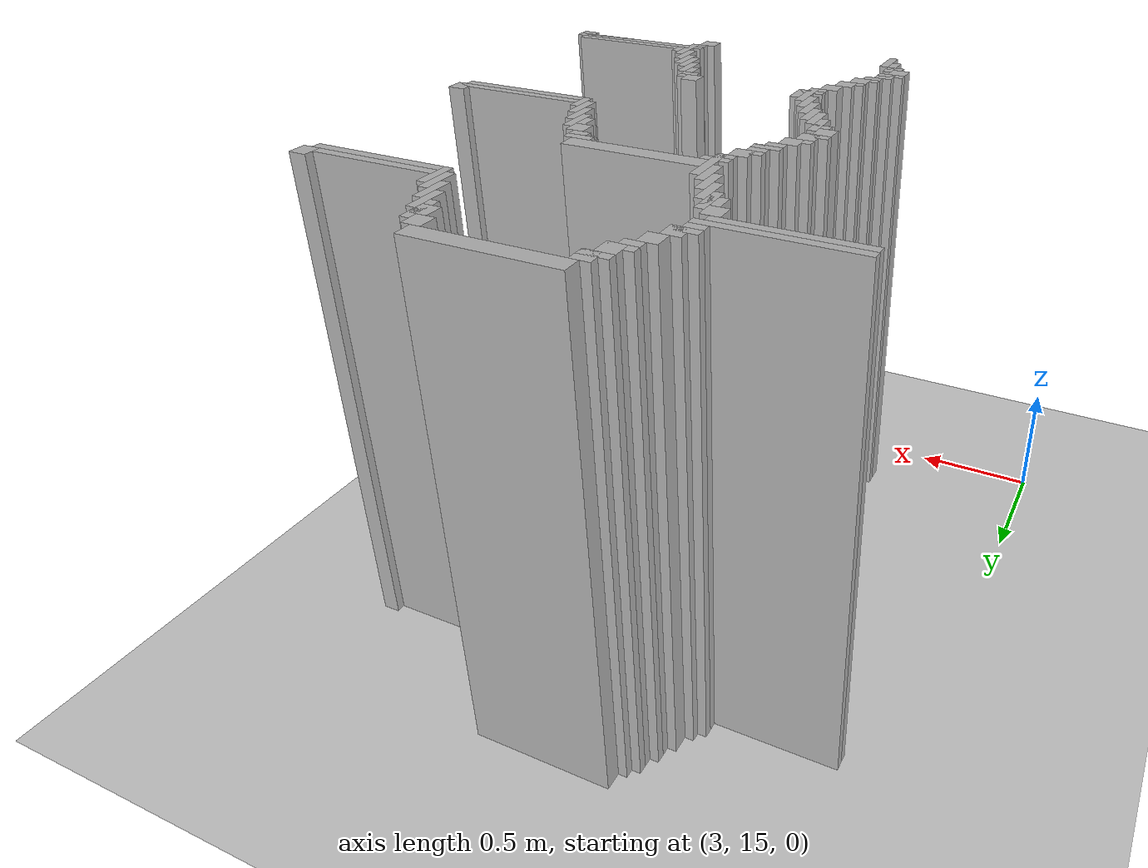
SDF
<sdf version="1.6">
 <world name="slam_world">
  <model name="ground_plane">
   <static>true</static>
   <link name="link">
    <collision name="collision">
     <geometry><plane><normal>0 0 1</normal><size>100 100</size></plane></geometry>
    </collision>
    <visual name="visual">
     <geometry><plane><normal>0 0 1</normal><size>100 100</size></plane></geometry>
     <material>
      <ambient>0.8 0.8 0.8 1</ambient>
      <diffuse>0.8 0.8 0.8 1</diffuse>
      <specular>0.8 0.8 0.8 1</specular>
     </material>
    </visual>
   </link>
  </model>
  <model name="wall_2">
   <static>true</static>
   <pose>4.211136890951276 17.366589327146173 1.0 0 0 0</pose>
   <link name="link">
    <collision name="collision">
     <geometry><box><size>0.5568445475638051 0.06960556844547564 2.0</size></box></geometry>
    </collision>
    <visual name="visual">
     <geometry><box><size>0.5568445475638051 0.06960556844547564 2.0</size></box></geometry>
     <material><ambient>0.5 0.5 0.5 1</ambient><diffuse>0.7 0.7 0.7 1</diffuse></material>
    </visual>
   </link>
  </model>
  <model name="wall_15">
   <static>true</static>
   <pose>3.932714617169373 17.296983758700694 1.0 0 0 0</pose>
   <link name="link">
    <collision name="collision">
     <geometry><box><size>0.06960556844547564 0.06960556844547564 2.0</size></box></geometry>
    </collision>
    <visual name="visual">
     <geometry><box><size>0.06960556844547564 0.06960556844547564 2.0</size></box></geometry>
     <material><ambient>0.5 0.5 0.5 1</ambient><diffuse>0.7 0.7 0.7 1</diffuse></material>
    </visual>
   </link>
  </model>
  <model name="wall_16">
   <static>true</static>
   <pose>4.489559164733178 17.296983758700694 1.0 0 0 0</pose>
   <link name="link">
    <collision name="collision">
     <geometry><box><size>0.06960556844547564 0.06960556844547564 2.0</size></box></geometry>
    </collision>
    <visual name="visual">
     <geometry><box><size>0.06960556844547564 0.06960556844547564 2.0</size></box></geometry>
     <material><ambient>0.5 0.5 0.5 1</ambient><diffuse>0.7 0.7 0.7 1</diffuse></material>
    </visual>
   </link>
  </model>
  <model name="wall_35">
   <static>true</static>
   <pose>3.9153132250580045 17.279582366589327 1.0 0 0 0</pose>
   <link name="link">
    <collision name="collision">
     <geometry><box><size>0.10440835266821345 0.03480278422273782 2.0</size></box></geometry>
    </collision>
    <visual name="visual">
     <geometry><box><size>0.10440835266821345 0.03480278422273782 2.0</size></box></geometry>
     <material><ambient>0.5 0.5 0.5 1</ambient><diffuse>0.7 0.7 0.7 1</diffuse></material>
    </visual>
   </link>
  </model>
  <model name="wall_36">
   <static>true</static>
   <pose>4.541763341067285 17.22737819025522 1.0 0 0 0</pose>
   <link name="link">
    <collision name="collision">
     <geometry><box><size>0.03480278422273782 0.13921113689095127 2.0</size></box></geometry>
    </collision>
    <visual name="visual">
     <geometry><box><size>0.03480278422273782 0.13921113689095127 2.0</size></box></geometry>
     <material><ambient>0.5 0.5 0.5 1</ambient><diffuse>0.7 0.7 0.7 1</diffuse></material>
    </visual>
   </link>
  </model>
  <model name="wall_55">
   <static>true</static>
   <pose>3.897911832946636 17.22737819025522 1.0 0 0 0</pose>
   <link name="link">
    <collision name="collision">
     <geometry><box><size>0.06960556844547564 0.06960556844547564 2.0</size></box></geometry>
    </collision>
    <visual name="visual">
     <geometry><box><size>0.06960556844547564 0.06960556844547564 2.0</size></box></geometry>
     <material><ambient>0.5 0.5 0.5 1</ambient><diffuse>0.7 0.7 0.7 1</diffuse></material>
    </visual>
   </link>
  </model>
  <model name="wall_56">
   <static>true</static>
   <pose>4.524361948955916 17.22737819025522 1.0 0 0 0</pose>
   <link name="link">
    <collision name="collision">
     <geometry><box><size>0.06960556844547564 0.06960556844547564 2.0</size></box></geometry>
    </collision>
    <visual name="visual">
     <geometry><box><size>0.06960556844547564 0.06960556844547564 2.0</size></box></geometry>
     <material><ambient>0.5 0.5 0.5 1</ambient><diffuse>0.7 0.7 0.7 1</diffuse></material>
    </visual>
   </link>
  </model>
  <model name="wall_75">
   <static>true</static>
   <pose>3.8805104408352666 17.209976798143853 1.0 0 0 0</pose>
   <link name="link">
    <collision name="collision">
     <geometry><box><size>0.10440835266821345 0.03480278422273782 2.0</size></box></geometry>
    </collision>
    <visual name="visual">
     <geometry><box><size>0.10440835266821345 0.03480278422273782 2.0</size></box></geometry>
     <material><ambient>0.5 0.5 0.5 1</ambient><diffuse>0.7 0.7 0.7 1</diffuse></material>
    </visual>
   </link>
  </model>
  <model name="wall_76">
   <static>true</static>
   <pose>4.576566125290023 17.157772621809745 1.0 0 0 0</pose>
   <link name="link">
    <collision name="collision">
     <geometry><box><size>0.03480278422273782 0.13921113689095127 2.0</size></box></geometry>
    </collision>
    <visual name="visual">
     <geometry><box><size>0.03480278422273782 0.13921113689095127 2.0</size></box></geometry>
     <material><ambient>0.5 0.5 0.5 1</ambient><diffuse>0.7 0.7 0.7 1</diffuse></material>
    </visual>
   </link>
  </model>
  <model name="wall_93">
   <static>true</static>
   <pose>3.863109048723898 17.17517401392111 1.0 0 0 0</pose>
   <link name="link">
    <collision name="collision">
     <geometry><box><size>0.06960556844547564 0.03480278422273782 2.0</size></box></geometry>
    </collision>
    <visual name="visual">
     <geometry><box><size>0.06960556844547564 0.03480278422273782 2.0</size></box></geometry>
     <material><ambient>0.5 0.5 0.5 1</ambient><diffuse>0.7 0.7 0.7 1</diffuse></material>
    </visual>
   </link>
  </model>
  <model name="wall_105">
   <static>true</static>
   <pose>3.82830626450116 17.122969837587007 1.0 0 0 0</pose>
   <link name="link">
    <collision name="collision">
     <geometry><box><size>0.06960556844547564 0.06960556844547564 2.0</size></box></geometry>
    </collision>
    <visual name="visual">
     <geometry><box><size>0.06960556844547564 0.06960556844547564 2.0</size></box></geometry>
     <material><ambient>0.5 0.5 0.5 1</ambient><diffuse>0.7 0.7 0.7 1</diffuse></material>
    </visual>
   </link>
  </model>
  <model name="wall_106">
   <static>true</static>
   <pose>4.611368909512761 17.08816705336427 1.0 0 0 0</pose>
   <link name="link">
    <collision name="collision">
     <geometry><box><size>0.03480278422273782 0.13921113689095127 2.0</size></box></geometry>
    </collision>
    <visual name="visual">
     <geometry><box><size>0.03480278422273782 0.13921113689095127 2.0</size></box></geometry>
     <material><ambient>0.5 0.5 0.5 1</ambient><diffuse>0.7 0.7 0.7 1</diffuse></material>
    </visual>
   </link>
  </model>
  <model name="wall_125">
   <static>true</static>
   <pose>3.793503480278422 17.053364269141532 1.0 0 0 0</pose>
   <link name="link">
    <collision name="collision">
     <geometry><box><size>0.06960556844547564 0.06960556844547564 2.0</size></box></geometry>
    </collision>
    <visual name="visual">
     <geometry><box><size>0.06960556844547564 0.06960556844547564 2.0</size></box></geometry>
     <material><ambient>0.5 0.5 0.5 1</ambient><diffuse>0.7 0.7 0.7 1</diffuse></material>
    </visual>
   </link>
  </model>
  <model name="wall_126">
   <static>true</static>
   <pose>4.646171693735498 17.01856148491879 1.0 0 0 0</pose>
   <link name="link">
    <collision name="collision">
     <geometry><box><size>0.03480278422273782 0.13921113689095127 2.0</size></box></geometry>
    </collision>
    <visual name="visual">
     <geometry><box><size>0.03480278422273782 0.13921113689095127 2.0</size></box></geometry>
     <material><ambient>0.5 0.5 0.5 1</ambient><diffuse>0.7 0.7 0.7 1</diffuse></material>
    </visual>
   </link>
  </model>
  <model name="wall_145">
   <static>true</static>
   <pose>3.776102088167053 17.035962877030162 1.0 0 0 0</pose>
   <link name="link">
    <collision name="collision">
     <geometry><box><size>0.10440835266821345 0.03480278422273782 2.0</size></box></geometry>
    </collision>
    <visual name="visual">
     <geometry><box><size>0.10440835266821345 0.03480278422273782 2.0</size></box></geometry>
     <material><ambient>0.5 0.5 0.5 1</ambient><diffuse>0.7 0.7 0.7 1</diffuse></material>
    </visual>
   </link>
  </model>
  <model name="wall_146">
   <static>true</static>
   <pose>4.6809744779582365 16.983758700696054 1.0 0 0 0</pose>
   <link name="link">
    <collision name="collision">
     <geometry><box><size>0.03480278422273782 0.13921113689095127 2.0</size></box></geometry>
    </collision>
    <visual name="visual">
     <geometry><box><size>0.03480278422273782 0.13921113689095127 2.0</size></box></geometry>
     <material><ambient>0.5 0.5 0.5 1</ambient><diffuse>0.7 0.7 0.7 1</diffuse></material>
    </visual>
   </link>
  </model>
  <model name="wall_163">
   <static>true</static>
   <pose>3.7587006960556844 16.983758700696054 1.0 0 0 0</pose>
   <link name="link">
    <collision name="collision">
     <geometry><box><size>0.06960556844547564 0.06960556844547564 2.0</size></box></geometry>
    </collision>
    <visual name="visual">
     <geometry><box><size>0.06960556844547564 0.06960556844547564 2.0</size></box></geometry>
     <material><ambient>0.5 0.5 0.5 1</ambient><diffuse>0.7 0.7 0.7 1</diffuse></material>
    </visual>
   </link>
  </model>
  <model name="wall_164">
   <static>true</static>
   <pose>5.220417633410673 16.983758700696054 1.0 0 0 0</pose>
   <link name="link">
    <collision name="collision">
     <geometry><box><size>0.06960556844547564 0.06960556844547564 2.0</size></box></geometry>
    </collision>
    <visual name="visual">
     <geometry><box><size>0.06960556844547564 0.06960556844547564 2.0</size></box></geometry>
     <material><ambient>0.5 0.5 0.5 1</ambient><diffuse>0.7 0.7 0.7 1</diffuse></material>
    </visual>
   </link>
  </model>
  <model name="wall_173">
   <static>true</static>
   <pose>3.51508120649652 16.966357308584687 1.0 0 0 0</pose>
   <link name="link">
    <collision name="collision">
     <geometry><box><size>0.5568445475638051 0.03480278422273782 2.0</size></box></geometry>
    </collision>
    <visual name="visual">
     <geometry><box><size>0.5568445475638051 0.03480278422273782 2.0</size></box></geometry>
     <material><ambient>0.5 0.5 0.5 1</ambient><diffuse>0.7 0.7 0.7 1</diffuse></material>
    </visual>
   </link>
  </model>
  <model name="wall_174">
   <static>true</static>
   <pose>4.976798143851508 16.966357308584687 1.0 0 0 0</pose>
   <link name="link">
    <collision name="collision">
     <geometry><box><size>0.5568445475638051 0.03480278422273782 2.0</size></box></geometry>
    </collision>
    <visual name="visual">
     <geometry><box><size>0.5568445475638051 0.03480278422273782 2.0</size></box></geometry>
     <material><ambient>0.5 0.5 0.5 1</ambient><diffuse>0.7 0.7 0.7 1</diffuse></material>
    </visual>
   </link>
  </model>
  <model name="wall_184">
   <static>true</static>
   <pose>3.4976798143851506 16.93155452436195 1.0 0 0 0</pose>
   <link name="link">
    <collision name="collision">
     <geometry><box><size>0.5220417633410672 0.03480278422273782 2.0</size></box></geometry>
    </collision>
    <visual name="visual">
     <geometry><box><size>0.5220417633410672 0.03480278422273782 2.0</size></box></geometry>
     <material><ambient>0.5 0.5 0.5 1</ambient><diffuse>0.7 0.7 0.7 1</diffuse></material>
    </visual>
   </link>
  </model>
  <model name="wall_185">
   <static>true</static>
   <pose>4.959396751740139 16.93155452436195 1.0 0 0 0</pose>
   <link name="link">
    <collision name="collision">
     <geometry><box><size>0.5220417633410672 0.03480278422273782 2.0</size></box></geometry>
    </collision>
    <visual name="visual">
     <geometry><box><size>0.5220417633410672 0.03480278422273782 2.0</size></box></geometry>
     <material><ambient>0.5 0.5 0.5 1</ambient><diffuse>0.7 0.7 0.7 1</diffuse></material>
    </visual>
   </link>
  </model>
  <model name="wall_194">
   <static>true</static>
   <pose>3.7587006960556844 16.87935034802784 1.0 0 0 0</pose>
   <link name="link">
    <collision name="collision">
     <geometry><box><size>0.06960556844547564 0.06960556844547564 2.0</size></box></geometry>
    </collision>
    <visual name="visual">
     <geometry><box><size>0.06960556844547564 0.06960556844547564 2.0</size></box></geometry>
     <material><ambient>0.5 0.5 0.5 1</ambient><diffuse>0.7 0.7 0.7 1</diffuse></material>
    </visual>
   </link>
  </model>
  <model name="wall_202">
   <static>true</static>
   <pose>3.810904872389791 16.809744779582367 1.0 0 0 0</pose>
   <link name="link">
    <collision name="collision">
     <geometry><box><size>0.03480278422273782 0.13921113689095127 2.0</size></box></geometry>
    </collision>
    <visual name="visual">
     <geometry><box><size>0.03480278422273782 0.13921113689095127 2.0</size></box></geometry>
     <material><ambient>0.5 0.5 0.5 1</ambient><diffuse>0.7 0.7 0.7 1</diffuse></material>
    </visual>
   </link>
  </model>
  <model name="wall_210">
   <static>true</static>
   <pose>3.793503480278422 16.809744779582367 1.0 0 0 0</pose>
   <link name="link">
    <collision name="collision">
     <geometry><box><size>0.06960556844547564 0.06960556844547564 2.0</size></box></geometry>
    </collision>
    <visual name="visual">
     <geometry><box><size>0.06960556844547564 0.06960556844547564 2.0</size></box></geometry>
     <material><ambient>0.5 0.5 0.5 1</ambient><diffuse>0.7 0.7 0.7 1</diffuse></material>
    </visual>
   </link>
  </model>
  <model name="wall_218">
   <static>true</static>
   <pose>3.845707656612529 16.74013921113689 1.0 0 0 0</pose>
   <link name="link">
    <collision name="collision">
     <geometry><box><size>0.03480278422273782 0.13921113689095127 2.0</size></box></geometry>
    </collision>
    <visual name="visual">
     <geometry><box><size>0.03480278422273782 0.13921113689095127 2.0</size></box></geometry>
     <material><ambient>0.5 0.5 0.5 1</ambient><diffuse>0.7 0.7 0.7 1</diffuse></material>
    </visual>
   </link>
  </model>
  <model name="wall_230">
   <static>true</static>
   <pose>3.8805104408352666 16.670533642691414 1.0 0 0 0</pose>
   <link name="link">
    <collision name="collision">
     <geometry><box><size>0.03480278422273782 0.13921113689095127 2.0</size></box></geometry>
    </collision>
    <visual name="visual">
     <geometry><box><size>0.03480278422273782 0.13921113689095127 2.0</size></box></geometry>
     <material><ambient>0.5 0.5 0.5 1</ambient><diffuse>0.7 0.7 0.7 1</diffuse></material>
    </visual>
   </link>
  </model>
  <model name="wall_238">
   <static>true</static>
   <pose>3.9153132250580045 16.60092807424594 1.0 0 0 0</pose>
   <link name="link">
    <collision name="collision">
     <geometry><box><size>0.03480278422273782 0.13921113689095127 2.0</size></box></geometry>
    </collision>
    <visual name="visual">
     <geometry><box><size>0.03480278422273782 0.13921113689095127 2.0</size></box></geometry>
     <material><ambient>0.5 0.5 0.5 1</ambient><diffuse>0.7 0.7 0.7 1</diffuse></material>
    </visual>
   </link>
  </model>
  <model name="wall_246">
   <static>true</static>
   <pose>3.9501160092807424 16.531322505800464 1.0 0 0 0</pose>
   <link name="link">
    <collision name="collision">
     <geometry><box><size>0.03480278422273782 0.2088167053364269 2.0</size></box></geometry>
    </collision>
    <visual name="visual">
     <geometry><box><size>0.03480278422273782 0.2088167053364269 2.0</size></box></geometry>
     <material><ambient>0.5 0.5 0.5 1</ambient><diffuse>0.7 0.7 0.7 1</diffuse></material>
    </visual>
   </link>
  </model>
  <model name="wall_261">
   <static>true</static>
   <pose>4.228538283062645 16.531322505800464 1.0 0 0 0</pose>
   <link name="link">
    <collision name="collision">
     <geometry><box><size>0.5220417633410672 0.06960556844547564 2.0</size></box></geometry>
    </collision>
    <visual name="visual">
     <geometry><box><size>0.5220417633410672 0.06960556844547564 2.0</size></box></geometry>
     <material><ambient>0.5 0.5 0.5 1</ambient><diffuse>0.7 0.7 0.7 1</diffuse></material>
    </visual>
   </link>
  </model>
  <model name="wall_281">
   <static>true</static>
   <pose>3.9501160092807424 16.479118329466356 1.0 0 0 0</pose>
   <link name="link">
    <collision name="collision">
     <geometry><box><size>0.10440835266821345 0.03480278422273782 2.0</size></box></geometry>
    </collision>
    <visual name="visual">
     <geometry><box><size>0.10440835266821345 0.03480278422273782 2.0</size></box></geometry>
     <material><ambient>0.5 0.5 0.5 1</ambient><diffuse>0.7 0.7 0.7 1</diffuse></material>
    </visual>
   </link>
  </model>
  <model name="wall_282">
   <static>true</static>
   <pose>4.472157772621809 16.479118329466356 1.0 0 0 0</pose>
   <link name="link">
    <collision name="collision">
     <geometry><box><size>0.10440835266821345 0.03480278422273782 2.0</size></box></geometry>
    </collision>
    <visual name="visual">
     <geometry><box><size>0.10440835266821345 0.03480278422273782 2.0</size></box></geometry>
     <material><ambient>0.5 0.5 0.5 1</ambient><diffuse>0.7 0.7 0.7 1</diffuse></material>
    </visual>
   </link>
  </model>
  <model name="wall_294">
   <static>true</static>
   <pose>3.932714617169373 16.44431554524362 1.0 0 0 0</pose>
   <link name="link">
    <collision name="collision">
     <geometry><box><size>0.06960556844547564 0.03480278422273782 2.0</size></box></geometry>
    </collision>
    <visual name="visual">
     <geometry><box><size>0.06960556844547564 0.03480278422273782 2.0</size></box></geometry>
     <material><ambient>0.5 0.5 0.5 1</ambient><diffuse>0.7 0.7 0.7 1</diffuse></material>
    </visual>
   </link>
  </model>
  <model name="wall_295">
   <static>true</static>
   <pose>4.489559164733178 16.44431554524362 1.0 0 0 0</pose>
   <link name="link">
    <collision name="collision">
     <geometry><box><size>0.06960556844547564 0.03480278422273782 2.0</size></box></geometry>
    </collision>
    <visual name="visual">
     <geometry><box><size>0.06960556844547564 0.03480278422273782 2.0</size></box></geometry>
     <material><ambient>0.5 0.5 0.5 1</ambient><diffuse>0.7 0.7 0.7 1</diffuse></material>
    </visual>
   </link>
  </model>
  <model name="wall_304">
   <static>true</static>
   <pose>3.897911832946636 16.39211136890951 1.0 0 0 0</pose>
   <link name="link">
    <collision name="collision">
     <geometry><box><size>0.06960556844547564 0.06960556844547564 2.0</size></box></geometry>
    </collision>
    <visual name="visual">
     <geometry><box><size>0.06960556844547564 0.06960556844547564 2.0</size></box></geometry>
     <material><ambient>0.5 0.5 0.5 1</ambient><diffuse>0.7 0.7 0.7 1</diffuse></material>
    </visual>
   </link>
  </model>
  <model name="wall_305">
   <static>true</static>
   <pose>4.524361948955916 16.39211136890951 1.0 0 0 0</pose>
   <link name="link">
    <collision name="collision">
     <geometry><box><size>0.06960556844547564 0.06960556844547564 2.0</size></box></geometry>
    </collision>
    <visual name="visual">
     <geometry><box><size>0.06960556844547564 0.06960556844547564 2.0</size></box></geometry>
     <material><ambient>0.5 0.5 0.5 1</ambient><diffuse>0.7 0.7 0.7 1</diffuse></material>
    </visual>
   </link>
  </model>
  <model name="wall_321">
   <static>true</static>
   <pose>3.8805104408352666 16.374709976798144 1.0 0 0 0</pose>
   <link name="link">
    <collision name="collision">
     <geometry><box><size>0.10440835266821345 0.03480278422273782 2.0</size></box></geometry>
    </collision>
    <visual name="visual">
     <geometry><box><size>0.10440835266821345 0.03480278422273782 2.0</size></box></geometry>
     <material><ambient>0.5 0.5 0.5 1</ambient><diffuse>0.7 0.7 0.7 1</diffuse></material>
    </visual>
   </link>
  </model>
  <model name="wall_322">
   <static>true</static>
   <pose>4.576566125290023 16.322505800464036 1.0 0 0 0</pose>
   <link name="link">
    <collision name="collision">
     <geometry><box><size>0.03480278422273782 0.13921113689095127 2.0</size></box></geometry>
    </collision>
    <visual name="visual">
     <geometry><box><size>0.03480278422273782 0.13921113689095127 2.0</size></box></geometry>
     <material><ambient>0.5 0.5 0.5 1</ambient><diffuse>0.7 0.7 0.7 1</diffuse></material>
    </visual>
   </link>
  </model>
  <model name="wall_338">
   <static>true</static>
   <pose>3.863109048723898 16.322505800464036 1.0 0 0 0</pose>
   <link name="link">
    <collision name="collision">
     <geometry><box><size>0.06960556844547564 0.06960556844547564 2.0</size></box></geometry>
    </collision>
    <visual name="visual">
     <geometry><box><size>0.06960556844547564 0.06960556844547564 2.0</size></box></geometry>
     <material><ambient>0.5 0.5 0.5 1</ambient><diffuse>0.7 0.7 0.7 1</diffuse></material>
    </visual>
   </link>
  </model>
  <model name="wall_339">
   <static>true</static>
   <pose>4.559164733178654 16.322505800464036 1.0 0 0 0</pose>
   <link name="link">
    <collision name="collision">
     <geometry><box><size>0.06960556844547564 0.06960556844547564 2.0</size></box></geometry>
    </collision>
    <visual name="visual">
     <geometry><box><size>0.06960556844547564 0.06960556844547564 2.0</size></box></geometry>
     <material><ambient>0.5 0.5 0.5 1</ambient><diffuse>0.7 0.7 0.7 1</diffuse></material>
    </visual>
   </link>
  </model>
  <model name="wall_355">
   <static>true</static>
   <pose>3.845707656612529 16.30510440835267 1.0 0 0 0</pose>
   <link name="link">
    <collision name="collision">
     <geometry><box><size>0.10440835266821345 0.03480278422273782 2.0</size></box></geometry>
    </collision>
    <visual name="visual">
     <geometry><box><size>0.10440835266821345 0.03480278422273782 2.0</size></box></geometry>
     <material><ambient>0.5 0.5 0.5 1</ambient><diffuse>0.7 0.7 0.7 1</diffuse></material>
    </visual>
   </link>
  </model>
  <model name="wall_356">
   <static>true</static>
   <pose>4.611368909512761 16.25290023201856 1.0 0 0 0</pose>
   <link name="link">
    <collision name="collision">
     <geometry><box><size>0.03480278422273782 0.13921113689095127 2.0</size></box></geometry>
    </collision>
    <visual name="visual">
     <geometry><box><size>0.03480278422273782 0.13921113689095127 2.0</size></box></geometry>
     <material><ambient>0.5 0.5 0.5 1</ambient><diffuse>0.7 0.7 0.7 1</diffuse></material>
    </visual>
   </link>
  </model>
  <model name="wall_369">
   <static>true</static>
   <pose>3.82830626450116 16.270301624129928 1.0 0 0 0</pose>
   <link name="link">
    <collision name="collision">
     <geometry><box><size>0.06960556844547564 0.03480278422273782 2.0</size></box></geometry>
    </collision>
    <visual name="visual">
     <geometry><box><size>0.06960556844547564 0.03480278422273782 2.0</size></box></geometry>
     <material><ambient>0.5 0.5 0.5 1</ambient><diffuse>0.7 0.7 0.7 1</diffuse></material>
    </visual>
   </link>
  </model>
  <model name="wall_380">
   <static>true</static>
   <pose>3.793503480278422 16.218097447795824 1.0 0 0 0</pose>
   <link name="link">
    <collision name="collision">
     <geometry><box><size>0.06960556844547564 0.06960556844547564 2.0</size></box></geometry>
    </collision>
    <visual name="visual">
     <geometry><box><size>0.06960556844547564 0.06960556844547564 2.0</size></box></geometry>
     <material><ambient>0.5 0.5 0.5 1</ambient><diffuse>0.7 0.7 0.7 1</diffuse></material>
    </visual>
   </link>
  </model>
  <model name="wall_381">
   <static>true</static>
   <pose>4.646171693735498 16.183294663573086 1.0 0 0 0</pose>
   <link name="link">
    <collision name="collision">
     <geometry><box><size>0.03480278422273782 0.13921113689095127 2.0</size></box></geometry>
    </collision>
    <visual name="visual">
     <geometry><box><size>0.03480278422273782 0.13921113689095127 2.0</size></box></geometry>
     <material><ambient>0.5 0.5 0.5 1</ambient><diffuse>0.7 0.7 0.7 1</diffuse></material>
    </visual>
   </link>
  </model>
  <model name="wall_394">
   <static>true</static>
   <pose>3.776102088167053 16.200696055684453 1.0 0 0 0</pose>
   <link name="link">
    <collision name="collision">
     <geometry><box><size>0.10440835266821345 0.03480278422273782 2.0</size></box></geometry>
    </collision>
    <visual name="visual">
     <geometry><box><size>0.10440835266821345 0.03480278422273782 2.0</size></box></geometry>
     <material><ambient>0.5 0.5 0.5 1</ambient><diffuse>0.7 0.7 0.7 1</diffuse></material>
    </visual>
   </link>
  </model>
  <model name="wall_405">
   <static>true</static>
   <pose>3.7587006960556844 16.14849187935035 1.0 0 0 0</pose>
   <link name="link">
    <collision name="collision">
     <geometry><box><size>0.06960556844547564 0.06960556844547564 2.0</size></box></geometry>
    </collision>
    <visual name="visual">
     <geometry><box><size>0.06960556844547564 0.06960556844547564 2.0</size></box></geometry>
     <material><ambient>0.5 0.5 0.5 1</ambient><diffuse>0.7 0.7 0.7 1</diffuse></material>
    </visual>
   </link>
  </model>
  <model name="wall_406">
   <static>true</static>
   <pose>4.6809744779582365 16.13109048723898 1.0 0 0 0</pose>
   <link name="link">
    <collision name="collision">
     <geometry><box><size>0.03480278422273782 0.10440835266821345 2.0</size></box></geometry>
    </collision>
    <visual name="visual">
     <geometry><box><size>0.03480278422273782 0.10440835266821345 2.0</size></box></geometry>
     <material><ambient>0.5 0.5 0.5 1</ambient><diffuse>0.7 0.7 0.7 1</diffuse></material>
    </visual>
   </link>
  </model>
  <model name="wall_407">
   <static>true</static>
   <pose>5.220417633410673 16.14849187935035 1.0 0 0 0</pose>
   <link name="link">
    <collision name="collision">
     <geometry><box><size>0.06960556844547564 0.06960556844547564 2.0</size></box></geometry>
    </collision>
    <visual name="visual">
     <geometry><box><size>0.06960556844547564 0.06960556844547564 2.0</size></box></geometry>
     <material><ambient>0.5 0.5 0.5 1</ambient><diffuse>0.7 0.7 0.7 1</diffuse></material>
    </visual>
   </link>
  </model>
  <model name="wall_422">
   <static>true</static>
   <pose>3.741299303944315 16.13109048723898 1.0 0 0 0</pose>
   <link name="link">
    <collision name="collision">
     <geometry><box><size>0.10440835266821345 0.03480278422273782 2.0</size></box></geometry>
    </collision>
    <visual name="visual">
     <geometry><box><size>0.10440835266821345 0.03480278422273782 2.0</size></box></geometry>
     <material><ambient>0.5 0.5 0.5 1</ambient><diffuse>0.7 0.7 0.7 1</diffuse></material>
    </visual>
   </link>
  </model>
  <model name="wall_423">
   <static>true</static>
   <pose>4.976798143851508 16.13109048723898 1.0 0 0 0</pose>
   <link name="link">
    <collision name="collision">
     <geometry><box><size>0.5568445475638051 0.03480278422273782 2.0</size></box></geometry>
    </collision>
    <visual name="visual">
     <geometry><box><size>0.5568445475638051 0.03480278422273782 2.0</size></box></geometry>
     <material><ambient>0.5 0.5 0.5 1</ambient><diffuse>0.7 0.7 0.7 1</diffuse></material>
    </visual>
   </link>
  </model>
  <model name="wall_433">
   <static>true</static>
   <pose>3.7238979118329465 16.07888631090487 1.0 0 0 0</pose>
   <link name="link">
    <collision name="collision">
     <geometry><box><size>0.06960556844547564 0.06960556844547564 2.0</size></box></geometry>
    </collision>
    <visual name="visual">
     <geometry><box><size>0.06960556844547564 0.06960556844547564 2.0</size></box></geometry>
     <material><ambient>0.5 0.5 0.5 1</ambient><diffuse>0.7 0.7 0.7 1</diffuse></material>
    </visual>
   </link>
  </model>
  <model name="wall_434">
   <static>true</static>
   <pose>4.959396751740139 16.09628770301624 1.0 0 0 0</pose>
   <link name="link">
    <collision name="collision">
     <geometry><box><size>0.5220417633410672 0.03480278422273782 2.0</size></box></geometry>
    </collision>
    <visual name="visual">
     <geometry><box><size>0.5220417633410672 0.03480278422273782 2.0</size></box></geometry>
     <material><ambient>0.5 0.5 0.5 1</ambient><diffuse>0.7 0.7 0.7 1</diffuse></material>
    </visual>
   </link>
  </model>
  <model name="wall_447">
   <static>true</static>
   <pose>3.776102088167053 16.009280742459396 1.0 0 0 0</pose>
   <link name="link">
    <collision name="collision">
     <geometry><box><size>0.03480278422273782 0.13921113689095127 2.0</size></box></geometry>
    </collision>
    <visual name="visual">
     <geometry><box><size>0.03480278422273782 0.13921113689095127 2.0</size></box></geometry>
     <material><ambient>0.5 0.5 0.5 1</ambient><diffuse>0.7 0.7 0.7 1</diffuse></material>
    </visual>
   </link>
  </model>
  <model name="wall_460">
   <static>true</static>
   <pose>3.7587006960556844 16.026682134570766 1.0 0 0 0</pose>
   <link name="link">
    <collision name="collision">
     <geometry><box><size>0.06960556844547564 0.03480278422273782 2.0</size></box></geometry>
    </collision>
    <visual name="visual">
     <geometry><box><size>0.06960556844547564 0.03480278422273782 2.0</size></box></geometry>
     <material><ambient>0.5 0.5 0.5 1</ambient><diffuse>0.7 0.7 0.7 1</diffuse></material>
    </visual>
   </link>
  </model>
  <model name="wall_473">
   <static>true</static>
   <pose>3.810904872389791 15.93967517401392 1.0 0 0 0</pose>
   <link name="link">
    <collision name="collision">
     <geometry><box><size>0.03480278422273782 0.13921113689095127 2.0</size></box></geometry>
    </collision>
    <visual name="visual">
     <geometry><box><size>0.03480278422273782 0.13921113689095127 2.0</size></box></geometry>
     <material><ambient>0.5 0.5 0.5 1</ambient><diffuse>0.7 0.7 0.7 1</diffuse></material>
    </visual>
   </link>
  </model>
  <model name="wall_486">
   <static>true</static>
   <pose>3.845707656612529 15.904872389791183 1.0 0 0 0</pose>
   <link name="link">
    <collision name="collision">
     <geometry><box><size>0.03480278422273782 0.13921113689095127 2.0</size></box></geometry>
    </collision>
    <visual name="visual">
     <geometry><box><size>0.03480278422273782 0.13921113689095127 2.0</size></box></geometry>
     <material><ambient>0.5 0.5 0.5 1</ambient><diffuse>0.7 0.7 0.7 1</diffuse></material>
    </visual>
   </link>
  </model>
  <model name="wall_508">
   <static>true</static>
   <pose>3.8805104408352666 15.835266821345707 1.0 0 0 0</pose>
   <link name="link">
    <collision name="collision">
     <geometry><box><size>0.03480278422273782 0.13921113689095127 2.0</size></box></geometry>
    </collision>
    <visual name="visual">
     <geometry><box><size>0.03480278422273782 0.13921113689095127 2.0</size></box></geometry>
     <material><ambient>0.5 0.5 0.5 1</ambient><diffuse>0.7 0.7 0.7 1</diffuse></material>
    </visual>
   </link>
  </model>
  <model name="wall_528">
   <static>true</static>
   <pose>3.9153132250580045 15.765661252900232 1.0 0 0 0</pose>
   <link name="link">
    <collision name="collision">
     <geometry><box><size>0.03480278422273782 0.13921113689095127 2.0</size></box></geometry>
    </collision>
    <visual name="visual">
     <geometry><box><size>0.03480278422273782 0.13921113689095127 2.0</size></box></geometry>
     <material><ambient>0.5 0.5 0.5 1</ambient><diffuse>0.7 0.7 0.7 1</diffuse></material>
    </visual>
   </link>
  </model>
  <model name="wall_541">
   <static>true</static>
   <pose>3.9501160092807424 15.678654292343387 1.0 0 0 0</pose>
   <link name="link">
    <collision name="collision">
     <geometry><box><size>0.03480278422273782 0.17401392111368907 2.0</size></box></geometry>
    </collision>
    <visual name="visual">
     <geometry><box><size>0.03480278422273782 0.17401392111368907 2.0</size></box></geometry>
     <material><ambient>0.5 0.5 0.5 1</ambient><diffuse>0.7 0.7 0.7 1</diffuse></material>
    </visual>
   </link>
  </model>
  <model name="wall_553">
   <static>true</static>
   <pose>3.98491879350348 15.678654292343387 1.0 0 0 0</pose>
   <link name="link">
    <collision name="collision">
     <geometry><box><size>0.03480278422273782 0.10440835266821345 2.0</size></box></geometry>
    </collision>
    <visual name="visual">
     <geometry><box><size>0.03480278422273782 0.10440835266821345 2.0</size></box></geometry>
     <material><ambient>0.5 0.5 0.5 1</ambient><diffuse>0.7 0.7 0.7 1</diffuse></material>
    </visual>
   </link>
  </model>
  <model name="wall_565">
   <static>true</static>
   <pose>4.454756380510441 15.661252900232018 1.0 0 0 0</pose>
   <link name="link">
    <collision name="collision">
     <geometry><box><size>0.06960556844547564 0.06960556844547564 2.0</size></box></geometry>
    </collision>
    <visual name="visual">
     <geometry><box><size>0.06960556844547564 0.06960556844547564 2.0</size></box></geometry>
     <material><ambient>0.5 0.5 0.5 1</ambient><diffuse>0.7 0.7 0.7 1</diffuse></material>
    </visual>
   </link>
  </model>
  <model name="wall_578">
   <static>true</static>
   <pose>3.9501160092807424 15.64385150812065 1.0 0 0 0</pose>
   <link name="link">
    <collision name="collision">
     <geometry><box><size>0.10440835266821345 0.03480278422273782 2.0</size></box></geometry>
    </collision>
    <visual name="visual">
     <geometry><box><size>0.10440835266821345 0.03480278422273782 2.0</size></box></geometry>
     <material><ambient>0.5 0.5 0.5 1</ambient><diffuse>0.7 0.7 0.7 1</diffuse></material>
    </visual>
   </link>
  </model>
  <model name="wall_579">
   <static>true</static>
   <pose>4.506960556844548 15.591647331786543 1.0 0 0 0</pose>
   <link name="link">
    <collision name="collision">
     <geometry><box><size>0.03480278422273782 0.13921113689095127 2.0</size></box></geometry>
    </collision>
    <visual name="visual">
     <geometry><box><size>0.03480278422273782 0.13921113689095127 2.0</size></box></geometry>
     <material><ambient>0.5 0.5 0.5 1</ambient><diffuse>0.7 0.7 0.7 1</diffuse></material>
    </visual>
   </link>
  </model>
  <model name="wall_596">
   <static>true</static>
   <pose>3.932714617169373 15.609048723897912 1.0 0 0 0</pose>
   <link name="link">
    <collision name="collision">
     <geometry><box><size>0.06960556844547564 0.03480278422273782 2.0</size></box></geometry>
    </collision>
    <visual name="visual">
     <geometry><box><size>0.06960556844547564 0.03480278422273782 2.0</size></box></geometry>
     <material><ambient>0.5 0.5 0.5 1</ambient><diffuse>0.7 0.7 0.7 1</diffuse></material>
    </visual>
   </link>
  </model>
  <model name="wall_597">
   <static>true</static>
   <pose>4.489559164733178 15.609048723897912 1.0 0 0 0</pose>
   <link name="link">
    <collision name="collision">
     <geometry><box><size>0.06960556844547564 0.03480278422273782 2.0</size></box></geometry>
    </collision>
    <visual name="visual">
     <geometry><box><size>0.06960556844547564 0.03480278422273782 2.0</size></box></geometry>
     <material><ambient>0.5 0.5 0.5 1</ambient><diffuse>0.7 0.7 0.7 1</diffuse></material>
    </visual>
   </link>
  </model>
  <model name="wall_612">
   <static>true</static>
   <pose>3.897911832946636 15.556844547563804 1.0 0 0 0</pose>
   <link name="link">
    <collision name="collision">
     <geometry><box><size>0.06960556844547564 0.06960556844547564 2.0</size></box></geometry>
    </collision>
    <visual name="visual">
     <geometry><box><size>0.06960556844547564 0.06960556844547564 2.0</size></box></geometry>
     <material><ambient>0.5 0.5 0.5 1</ambient><diffuse>0.7 0.7 0.7 1</diffuse></material>
    </visual>
   </link>
  </model>
  <model name="wall_613">
   <static>true</static>
   <pose>4.541763341067285 15.522041763341067 1.0 0 0 0</pose>
   <link name="link">
    <collision name="collision">
     <geometry><box><size>0.03480278422273782 0.13921113689095127 2.0</size></box></geometry>
    </collision>
    <visual name="visual">
     <geometry><box><size>0.03480278422273782 0.13921113689095127 2.0</size></box></geometry>
     <material><ambient>0.5 0.5 0.5 1</ambient><diffuse>0.7 0.7 0.7 1</diffuse></material>
    </visual>
   </link>
  </model>
  <model name="wall_628">
   <static>true</static>
   <pose>3.863109048723898 15.48723897911833 1.0 0 0 0</pose>
   <link name="link">
    <collision name="collision">
     <geometry><box><size>0.06960556844547564 0.06960556844547564 2.0</size></box></geometry>
    </collision>
    <visual name="visual">
     <geometry><box><size>0.06960556844547564 0.06960556844547564 2.0</size></box></geometry>
     <material><ambient>0.5 0.5 0.5 1</ambient><diffuse>0.7 0.7 0.7 1</diffuse></material>
    </visual>
   </link>
  </model>
  <model name="wall_629">
   <static>true</static>
   <pose>4.576566125290023 15.452436194895592 1.0 0 0 0</pose>
   <link name="link">
    <collision name="collision">
     <geometry><box><size>0.03480278422273782 0.13921113689095127 2.0</size></box></geometry>
    </collision>
    <visual name="visual">
     <geometry><box><size>0.03480278422273782 0.13921113689095127 2.0</size></box></geometry>
     <material><ambient>0.5 0.5 0.5 1</ambient><diffuse>0.7 0.7 0.7 1</diffuse></material>
    </visual>
   </link>
  </model>
  <model name="wall_644">
   <static>true</static>
   <pose>3.845707656612529 15.46983758700696 1.0 0 0 0</pose>
   <link name="link">
    <collision name="collision">
     <geometry><box><size>0.10440835266821345 0.03480278422273782 2.0</size></box></geometry>
    </collision>
    <visual name="visual">
     <geometry><box><size>0.10440835266821345 0.03480278422273782 2.0</size></box></geometry>
     <material><ambient>0.5 0.5 0.5 1</ambient><diffuse>0.7 0.7 0.7 1</diffuse></material>
    </visual>
   </link>
  </model>
  <model name="wall_645">
   <static>true</static>
   <pose>4.611368909512761 15.417633410672853 1.0 0 0 0</pose>
   <link name="link">
    <collision name="collision">
     <geometry><box><size>0.03480278422273782 0.13921113689095127 2.0</size></box></geometry>
    </collision>
    <visual name="visual">
     <geometry><box><size>0.03480278422273782 0.13921113689095127 2.0</size></box></geometry>
     <material><ambient>0.5 0.5 0.5 1</ambient><diffuse>0.7 0.7 0.7 1</diffuse></material>
    </visual>
   </link>
  </model>
  <model name="wall_658">
   <static>true</static>
   <pose>3.82830626450116 15.417633410672853 1.0 0 0 0</pose>
   <link name="link">
    <collision name="collision">
     <geometry><box><size>0.06960556844547564 0.06960556844547564 2.0</size></box></geometry>
    </collision>
    <visual name="visual">
     <geometry><box><size>0.06960556844547564 0.06960556844547564 2.0</size></box></geometry>
     <material><ambient>0.5 0.5 0.5 1</ambient><diffuse>0.7 0.7 0.7 1</diffuse></material>
    </visual>
   </link>
  </model>
  <model name="wall_670">
   <static>true</static>
   <pose>3.810904872389791 15.400232018561484 1.0 0 0 0</pose>
   <link name="link">
    <collision name="collision">
     <geometry><box><size>0.10440835266821345 0.03480278422273782 2.0</size></box></geometry>
    </collision>
    <visual name="visual">
     <geometry><box><size>0.10440835266821345 0.03480278422273782 2.0</size></box></geometry>
     <material><ambient>0.5 0.5 0.5 1</ambient><diffuse>0.7 0.7 0.7 1</diffuse></material>
    </visual>
   </link>
  </model>
  <model name="wall_671">
   <static>true</static>
   <pose>4.646171693735498 15.348027842227378 1.0 0 0 0</pose>
   <link name="link">
    <collision name="collision">
     <geometry><box><size>0.03480278422273782 0.13921113689095127 2.0</size></box></geometry>
    </collision>
    <visual name="visual">
     <geometry><box><size>0.03480278422273782 0.13921113689095127 2.0</size></box></geometry>
     <material><ambient>0.5 0.5 0.5 1</ambient><diffuse>0.7 0.7 0.7 1</diffuse></material>
    </visual>
   </link>
  </model>
  <model name="wall_683">
   <static>true</static>
   <pose>3.793503480278422 15.365429234338746 1.0 0 0 0</pose>
   <link name="link">
    <collision name="collision">
     <geometry><box><size>0.06960556844547564 0.03480278422273782 2.0</size></box></geometry>
    </collision>
    <visual name="visual">
     <geometry><box><size>0.06960556844547564 0.03480278422273782 2.0</size></box></geometry>
     <material><ambient>0.5 0.5 0.5 1</ambient><diffuse>0.7 0.7 0.7 1</diffuse></material>
    </visual>
   </link>
  </model>
  <model name="wall_692">
   <static>true</static>
   <pose>3.7587006960556844 15.31322505800464 1.0 0 0 0</pose>
   <link name="link">
    <collision name="collision">
     <geometry><box><size>0.06960556844547564 0.06960556844547564 2.0</size></box></geometry>
    </collision>
    <visual name="visual">
     <geometry><box><size>0.06960556844547564 0.06960556844547564 2.0</size></box></geometry>
     <material><ambient>0.5 0.5 0.5 1</ambient><diffuse>0.7 0.7 0.7 1</diffuse></material>
    </visual>
   </link>
  </model>
  <model name="wall_693">
   <static>true</static>
   <pose>4.6809744779582365 15.261020881670532 1.0 0 0 0</pose>
   <link name="link">
    <collision name="collision">
     <geometry><box><size>0.03480278422273782 0.17401392111368907 2.0</size></box></geometry>
    </collision>
    <visual name="visual">
     <geometry><box><size>0.03480278422273782 0.17401392111368907 2.0</size></box></geometry>
     <material><ambient>0.5 0.5 0.5 1</ambient><diffuse>0.7 0.7 0.7 1</diffuse></material>
    </visual>
   </link>
  </model>
  <model name="wall_708">
   <static>true</static>
   <pose>3.741299303944315 15.295823665893272 1.0 0 0 0</pose>
   <link name="link">
    <collision name="collision">
     <geometry><box><size>0.10440835266821345 0.03480278422273782 2.0</size></box></geometry>
    </collision>
    <visual name="visual">
     <geometry><box><size>0.10440835266821345 0.03480278422273782 2.0</size></box></geometry>
     <material><ambient>0.5 0.5 0.5 1</ambient><diffuse>0.7 0.7 0.7 1</diffuse></material>
    </visual>
   </link>
  </model>
  <model name="wall_709">
   <static>true</static>
   <pose>4.715777262180974 15.261020881670532 1.0 0 0 0</pose>
   <link name="link">
    <collision name="collision">
     <geometry><box><size>0.03480278422273782 0.10440835266821345 2.0</size></box></geometry>
    </collision>
    <visual name="visual">
     <geometry><box><size>0.03480278422273782 0.10440835266821345 2.0</size></box></geometry>
     <material><ambient>0.5 0.5 0.5 1</ambient><diffuse>0.7 0.7 0.7 1</diffuse></material>
    </visual>
   </link>
  </model>
  <model name="wall_722">
   <static>true</static>
   <pose>3.7238979118329465 15.243619489559164 1.0 0 0 0</pose>
   <link name="link">
    <collision name="collision">
     <geometry><box><size>0.06960556844547564 0.06960556844547564 2.0</size></box></geometry>
    </collision>
    <visual name="visual">
     <geometry><box><size>0.06960556844547564 0.06960556844547564 2.0</size></box></geometry>
     <material><ambient>0.5 0.5 0.5 1</ambient><diffuse>0.7 0.7 0.7 1</diffuse></material>
    </visual>
   </link>
  </model>
  <model name="wall_723">
   <static>true</static>
   <pose>4.976798143851508 15.243619489559164 1.0 0 0 0</pose>
   <link name="link">
    <collision name="collision">
     <geometry><box><size>0.4872389791183295 0.06960556844547564 2.0</size></box></geometry>
    </collision>
    <visual name="visual">
     <geometry><box><size>0.4872389791183295 0.06960556844547564 2.0</size></box></geometry>
     <material><ambient>0.5 0.5 0.5 1</ambient><diffuse>0.7 0.7 0.7 1</diffuse></material>
    </visual>
   </link>
  </model>
  <model name="wall_734">
   <static>true</static>
   <pose>3.776102088167053 15.174013921113689 1.0 0 0 0</pose>
   <link name="link">
    <collision name="collision">
     <geometry><box><size>0.03480278422273782 0.13921113689095127 2.0</size></box></geometry>
    </collision>
    <visual name="visual">
     <geometry><box><size>0.03480278422273782 0.13921113689095127 2.0</size></box></geometry>
     <material><ambient>0.5 0.5 0.5 1</ambient><diffuse>0.7 0.7 0.7 1</diffuse></material>
    </visual>
   </link>
  </model>
  <model name="wall_735">
   <static>true</static>
   <pose>4.94199535962877 15.226218097447795 1.0 0 0 0</pose>
   <link name="link">
    <collision name="collision">
     <geometry><box><size>0.6264501160092807 0.03480278422273782 2.0</size></box></geometry>
    </collision>
    <visual name="visual">
     <geometry><box><size>0.6264501160092807 0.03480278422273782 2.0</size></box></geometry>
     <material><ambient>0.5 0.5 0.5 1</ambient><diffuse>0.7 0.7 0.7 1</diffuse></material>
    </visual>
   </link>
  </model>
  <model name="wall_750">
   <static>true</static>
   <pose>3.7587006960556844 15.191415313225058 1.0 0 0 0</pose>
   <link name="link">
    <collision name="collision">
     <geometry><box><size>0.06960556844547564 0.03480278422273782 2.0</size></box></geometry>
    </collision>
    <visual name="visual">
     <geometry><box><size>0.06960556844547564 0.03480278422273782 2.0</size></box></geometry>
     <material><ambient>0.5 0.5 0.5 1</ambient><diffuse>0.7 0.7 0.7 1</diffuse></material>
    </visual>
   </link>
  </model>
  <model name="wall_751">
   <static>true</static>
   <pose>4.663573085846868 15.191415313225058 1.0 0 0 0</pose>
   <link name="link">
    <collision name="collision">
     <geometry><box><size>0.06960556844547564 0.03480278422273782 2.0</size></box></geometry>
    </collision>
    <visual name="visual">
     <geometry><box><size>0.06960556844547564 0.03480278422273782 2.0</size></box></geometry>
     <material><ambient>0.5 0.5 0.5 1</ambient><diffuse>0.7 0.7 0.7 1</diffuse></material>
    </visual>
   </link>
  </model>
  <model name="wall_752">
   <static>true</static>
   <pose>5.220417633410673 15.191415313225058 1.0 0 0 0</pose>
   <link name="link">
    <collision name="collision">
     <geometry><box><size>0.06960556844547564 0.03480278422273782 2.0</size></box></geometry>
    </collision>
    <visual name="visual">
     <geometry><box><size>0.06960556844547564 0.03480278422273782 2.0</size></box></geometry>
     <material><ambient>0.5 0.5 0.5 1</ambient><diffuse>0.7 0.7 0.7 1</diffuse></material>
    </visual>
   </link>
  </model>
  <model name="wall_767">
   <static>true</static>
   <pose>3.810904872389791 15.104408352668212 1.0 0 0 0</pose>
   <link name="link">
    <collision name="collision">
     <geometry><box><size>0.03480278422273782 0.13921113689095127 2.0</size></box></geometry>
    </collision>
    <visual name="visual">
     <geometry><box><size>0.03480278422273782 0.13921113689095127 2.0</size></box></geometry>
     <material><ambient>0.5 0.5 0.5 1</ambient><diffuse>0.7 0.7 0.7 1</diffuse></material>
    </visual>
   </link>
  </model>
  <model name="wall_768">
   <static>true</static>
   <pose>4.6287703016241295 15.139211136890951 1.0 0 0 0</pose>
   <link name="link">
    <collision name="collision">
     <geometry><box><size>0.06960556844547564 0.06960556844547564 2.0</size></box></geometry>
    </collision>
    <visual name="visual">
     <geometry><box><size>0.06960556844547564 0.06960556844547564 2.0</size></box></geometry>
     <material><ambient>0.5 0.5 0.5 1</ambient><diffuse>0.7 0.7 0.7 1</diffuse></material>
    </visual>
   </link>
  </model>
 </world>
</sdf>
